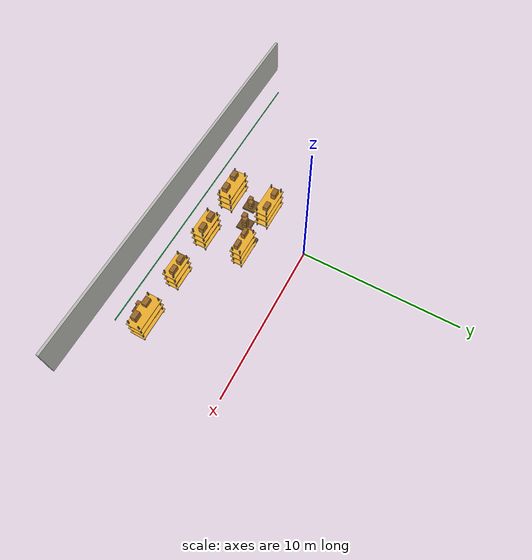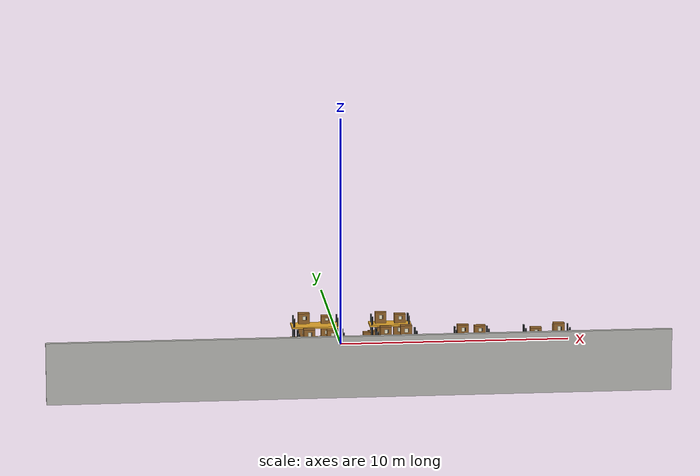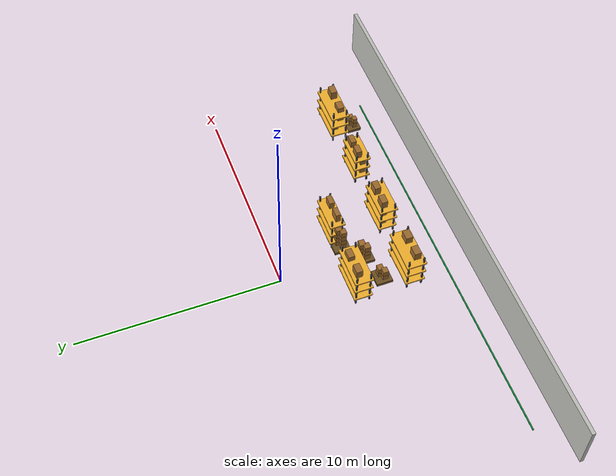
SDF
<sdf version="1.9">
 <world name="lidar_random_warehouse">
  <model name="main_aisle_left">
   <static>true</static>
   <pose>-1.000 -7.650 0.006 0 0 0</pose>
   <link name="link">
    <collision name="collision"><geometry><box><size>20.000 0.070 0.012</size></box></geometry></collision>
    <visual name="visual">
     <geometry><box><size>20.000 0.070 0.012</size></box></geometry>
     <material><ambient>0.04 0.45 0.16 1</ambient><diffuse>0.04 0.55 0.20 1</diffuse></material>
    </visual>
   </link>
  </model>
  <model name="front_wall">
   <static>true</static>
   <pose>0.000 -8.910 1.300 0 0 0</pose>
   <link name="link">
    <collision name="collision"><geometry><box><size>26.000 0.180 2.600</size></box></geometry></collision>
    <visual name="visual">
     <geometry><box><size>26.000 0.180 2.600</size></box></geometry>
     <material><ambient>0.66 0.66 0.64 1</ambient><diffuse>0.76 0.76 0.74 1</diffuse></material>
    </visual>
   </link>
  </model>
  <model name="shelf_2">
   <static>true</static>
   <pose>-1.400 -5.800 0 0 0 0</pose>
   <link name="link">
    <collision name="collision">
     <pose>0 0 1.025 0 0 0</pose>
     <geometry><box><size>1.958 0.805 2.050</size></box></geometry>
    </collision>
    <visual name="post_0">
     <pose>-0.944 -0.367 1.025 0 0 0</pose>
     <geometry><box><size>0.070 0.070 2.050</size></box></geometry>
     <material><ambient>0.03 0.04 0.05 1</ambient><diffuse>0.05 0.06 0.07 1</diffuse></material>
    </visual>
    <visual name="post_1">
     <pose>-0.944 0.367 1.025 0 0 0</pose>
     <geometry><box><size>0.070 0.070 2.050</size></box></geometry>
     <material><ambient>0.03 0.04 0.05 1</ambient><diffuse>0.05 0.06 0.07 1</diffuse></material>
    </visual>
    <visual name="post_2">
     <pose>0.944 -0.367 1.025 0 0 0</pose>
     <geometry><box><size>0.070 0.070 2.050</size></box></geometry>
     <material><ambient>0.03 0.04 0.05 1</ambient><diffuse>0.05 0.06 0.07 1</diffuse></material>
    </visual>
    <visual name="post_3">
     <pose>0.944 0.367 1.025 0 0 0</pose>
     <geometry><box><size>0.070 0.070 2.050</size></box></geometry>
     <material><ambient>0.03 0.04 0.05 1</ambient><diffuse>0.05 0.06 0.07 1</diffuse></material>
    </visual>
    <visual name="deck_1">
     <pose>0.000 0.000 0.420 0 0 0</pose>
     <geometry><box><size>2.098 0.985 0.070</size></box></geometry>
     <material><ambient>0.70 0.52 0.18 1</ambient><diffuse>0.96 0.70 0.18 1</diffuse></material>
    </visual>
    <visual name="box_1_-0.5">
     <pose>-0.490 0.145 0.661 0 0 0</pose>
     <geometry><box><size>0.480 0.338 0.321</size></box></geometry>
     <material><ambient>0.44 0.28 0.11 1</ambient><diffuse>0.62 0.42 0.18 1</diffuse></material>
    </visual>
    <visual name="label_1_-0.5">
     <pose>-0.490 -0.028 0.687 0 0 0</pose>
     <geometry><box><size>0.134 0.012 0.122</size></box></geometry>
     <material><ambient>0.86 0.86 0.76 1</ambient><diffuse>0.98 0.96 0.84 1</diffuse></material>
    </visual>
    <visual name="barcode_1_-0.5">
     <pose>-0.403 -0.032 0.687 0 0 0</pose>
     <geometry><box><size>0.029 0.014 0.109</size></box></geometry>
     <material><ambient>0.02 0.02 0.02 1</ambient><diffuse>0.02 0.02 0.02 1</diffuse></material>
    </visual>
    <visual name="box_1_0.5">
     <pose>0.490 0.145 0.681 0 0 0</pose>
     <geometry><box><size>0.480 0.338 0.361</size></box></geometry>
     <material><ambient>0.44 0.28 0.11 1</ambient><diffuse>0.62 0.42 0.18 1</diffuse></material>
    </visual>
    <visual name="label_1_0.5">
     <pose>0.490 -0.028 0.708 0 0 0</pose>
     <geometry><box><size>0.134 0.012 0.137</size></box></geometry>
     <material><ambient>0.86 0.86 0.76 1</ambient><diffuse>0.98 0.96 0.84 1</diffuse></material>
    </visual>
    <visual name="barcode_1_0.5">
     <pose>0.576 -0.032 0.708 0 0 0</pose>
     <geometry><box><size>0.029 0.014 0.123</size></box></geometry>
     <material><ambient>0.02 0.02 0.02 1</ambient><diffuse>0.02 0.02 0.02 1</diffuse></material>
    </visual>
    <visual name="deck_2">
     <pose>0.000 0.000 1.040 0 0 0</pose>
     <geometry><box><size>2.098 0.985 0.070</size></box></geometry>
     <material><ambient>0.70 0.52 0.18 1</ambient><diffuse>0.96 0.70 0.18 1</diffuse></material>
    </visual>
    <visual name="box_2_-0.5">
     <pose>-0.490 0.145 1.333 0 0 0</pose>
     <geometry><box><size>0.480 0.338 0.427</size></box></geometry>
     <material><ambient>0.44 0.28 0.11 1</ambient><diffuse>0.62 0.42 0.18 1</diffuse></material>
    </visual>
    <visual name="label_2_-0.5">
     <pose>-0.490 -0.028 1.362 0 0 0</pose>
     <geometry><box><size>0.134 0.012 0.162</size></box></geometry>
     <material><ambient>0.86 0.86 0.76 1</ambient><diffuse>0.98 0.96 0.84 1</diffuse></material>
    </visual>
    <visual name="barcode_2_-0.5">
     <pose>-0.403 -0.032 1.362 0 0 0</pose>
     <geometry><box><size>0.029 0.014 0.145</size></box></geometry>
     <material><ambient>0.02 0.02 0.02 1</ambient><diffuse>0.02 0.02 0.02 1</diffuse></material>
    </visual>
    <visual name="box_2_0.5">
     <pose>0.490 0.145 1.355 0 0 0</pose>
     <geometry><box><size>0.480 0.338 0.471</size></box></geometry>
     <material><ambient>0.44 0.28 0.11 1</ambient><diffuse>0.62 0.42 0.18 1</diffuse></material>
    </visual>
    <visual name="label_2_0.5">
     <pose>0.490 -0.028 1.385 0 0 0</pose>
     <geometry><box><size>0.134 0.012 0.179</size></box></geometry>
     <material><ambient>0.86 0.86 0.76 1</ambient><diffuse>0.98 0.96 0.84 1</diffuse></material>
    </visual>
    <visual name="barcode_2_0.5">
     <pose>0.576 -0.032 1.385 0 0 0</pose>
     <geometry><box><size>0.029 0.014 0.160</size></box></geometry>
     <material><ambient>0.02 0.02 0.02 1</ambient><diffuse>0.02 0.02 0.02 1</diffuse></material>
    </visual>
    <visual name="deck_3">
     <pose>0.000 0.000 1.660 0 0 0</pose>
     <geometry><box><size>2.098 0.985 0.070</size></box></geometry>
     <material><ambient>0.70 0.52 0.18 1</ambient><diffuse>0.96 0.70 0.18 1</diffuse></material>
    </visual>
    <visual name="box_3_-0.5">
     <pose>-0.490 -0.145 1.966 0 0 0</pose>
     <geometry><box><size>0.480 0.338 0.451</size></box></geometry>
     <material><ambient>0.44 0.28 0.11 1</ambient><diffuse>0.62 0.42 0.18 1</diffuse></material>
    </visual>
    <visual name="label_3_-0.5">
     <pose>-0.490 -0.318 1.995 0 0 0</pose>
     <geometry><box><size>0.134 0.012 0.171</size></box></geometry>
     <material><ambient>0.86 0.86 0.76 1</ambient><diffuse>0.98 0.96 0.84 1</diffuse></material>
    </visual>
    <visual name="barcode_3_-0.5">
     <pose>-0.403 -0.322 1.995 0 0 0</pose>
     <geometry><box><size>0.029 0.014 0.153</size></box></geometry>
     <material><ambient>0.02 0.02 0.02 1</ambient><diffuse>0.02 0.02 0.02 1</diffuse></material>
    </visual>
    <visual name="box_3_0.5">
     <pose>0.490 -0.145 1.941 0 0 0</pose>
     <geometry><box><size>0.480 0.338 0.402</size></box></geometry>
     <material><ambient>0.44 0.28 0.11 1</ambient><diffuse>0.62 0.42 0.18 1</diffuse></material>
    </visual>
    <visual name="label_3_0.5">
     <pose>0.490 -0.318 1.969 0 0 0</pose>
     <geometry><box><size>0.134 0.012 0.153</size></box></geometry>
     <material><ambient>0.86 0.86 0.76 1</ambient><diffuse>0.98 0.96 0.84 1</diffuse></material>
    </visual>
    <visual name="barcode_3_0.5">
     <pose>0.576 -0.322 1.969 0 0 0</pose>
     <geometry><box><size>0.029 0.014 0.137</size></box></geometry>
     <material><ambient>0.02 0.02 0.02 1</ambient><diffuse>0.02 0.02 0.02 1</diffuse></material>
    </visual>
   </link>
  </model>
  <model name="shelf_3">
   <static>true</static>
   <pose>1.800 -5.800 0 0 0 0</pose>
   <link name="link">
    <collision name="collision">
     <pose>0 0 1.025 0 0 0</pose>
     <geometry><box><size>1.716 0.743 2.050</size></box></geometry>
    </collision>
    <visual name="post_0">
     <pose>-0.823 -0.336 1.025 0 0 0</pose>
     <geometry><box><size>0.070 0.070 2.050</size></box></geometry>
     <material><ambient>0.03 0.04 0.05 1</ambient><diffuse>0.05 0.06 0.07 1</diffuse></material>
    </visual>
    <visual name="post_1">
     <pose>-0.823 0.336 1.025 0 0 0</pose>
     <geometry><box><size>0.070 0.070 2.050</size></box></geometry>
     <material><ambient>0.03 0.04 0.05 1</ambient><diffuse>0.05 0.06 0.07 1</diffuse></material>
    </visual>
    <visual name="post_2">
     <pose>0.823 -0.336 1.025 0 0 0</pose>
     <geometry><box><size>0.070 0.070 2.050</size></box></geometry>
     <material><ambient>0.03 0.04 0.05 1</ambient><diffuse>0.05 0.06 0.07 1</diffuse></material>
    </visual>
    <visual name="post_3">
     <pose>0.823 0.336 1.025 0 0 0</pose>
     <geometry><box><size>0.070 0.070 2.050</size></box></geometry>
     <material><ambient>0.03 0.04 0.05 1</ambient><diffuse>0.05 0.06 0.07 1</diffuse></material>
    </visual>
    <visual name="deck_1">
     <pose>0.000 0.000 0.420 0 0 0</pose>
     <geometry><box><size>1.856 0.923 0.070</size></box></geometry>
     <material><ambient>0.70 0.52 0.18 1</ambient><diffuse>0.96 0.70 0.18 1</diffuse></material>
    </visual>
    <visual name="box_1_-0.4">
     <pose>-0.429 0.134 0.643 0 0 0</pose>
     <geometry><box><size>0.480 0.312 0.286</size></box></geometry>
     <material><ambient>0.44 0.28 0.11 1</ambient><diffuse>0.62 0.42 0.18 1</diffuse></material>
    </visual>
    <visual name="label_1_-0.4">
     <pose>-0.429 -0.026 0.669 0 0 0</pose>
     <geometry><box><size>0.134 0.012 0.109</size></box></geometry>
     <material><ambient>0.86 0.86 0.76 1</ambient><diffuse>0.98 0.96 0.84 1</diffuse></material>
    </visual>
    <visual name="barcode_1_-0.4">
     <pose>-0.343 -0.030 0.669 0 0 0</pose>
     <geometry><box><size>0.029 0.014 0.097</size></box></geometry>
     <material><ambient>0.02 0.02 0.02 1</ambient><diffuse>0.02 0.02 0.02 1</diffuse></material>
    </visual>
    <visual name="box_1_0.4">
     <pose>0.429 0.134 0.715 0 0 0</pose>
     <geometry><box><size>0.480 0.312 0.429</size></box></geometry>
     <material><ambient>0.44 0.28 0.11 1</ambient><diffuse>0.62 0.42 0.18 1</diffuse></material>
    </visual>
    <visual name="label_1_0.4">
     <pose>0.429 -0.026 0.743 0 0 0</pose>
     <geometry><box><size>0.134 0.012 0.163</size></box></geometry>
     <material><ambient>0.86 0.86 0.76 1</ambient><diffuse>0.98 0.96 0.84 1</diffuse></material>
    </visual>
    <visual name="barcode_1_0.4">
     <pose>0.515 -0.030 0.743 0 0 0</pose>
     <geometry><box><size>0.029 0.014 0.146</size></box></geometry>
     <material><ambient>0.02 0.02 0.02 1</ambient><diffuse>0.02 0.02 0.02 1</diffuse></material>
    </visual>
    <visual name="deck_2">
     <pose>0.000 0.000 1.040 0 0 0</pose>
     <geometry><box><size>1.856 0.923 0.070</size></box></geometry>
     <material><ambient>0.70 0.52 0.18 1</ambient><diffuse>0.96 0.70 0.18 1</diffuse></material>
    </visual>
    <visual name="box_2_-0.4">
     <pose>-0.429 0.134 1.332 0 0 0</pose>
     <geometry><box><size>0.480 0.312 0.424</size></box></geometry>
     <material><ambient>0.44 0.28 0.11 1</ambient><diffuse>0.62 0.42 0.18 1</diffuse></material>
    </visual>
    <visual name="label_2_-0.4">
     <pose>-0.429 -0.026 1.360 0 0 0</pose>
     <geometry><box><size>0.134 0.012 0.161</size></box></geometry>
     <material><ambient>0.86 0.86 0.76 1</ambient><diffuse>0.98 0.96 0.84 1</diffuse></material>
    </visual>
    <visual name="barcode_2_-0.4">
     <pose>-0.343 -0.030 1.360 0 0 0</pose>
     <geometry><box><size>0.029 0.014 0.144</size></box></geometry>
     <material><ambient>0.02 0.02 0.02 1</ambient><diffuse>0.02 0.02 0.02 1</diffuse></material>
    </visual>
    <visual name="box_2_0.4">
     <pose>0.429 0.134 1.300 0 0 0</pose>
     <geometry><box><size>0.480 0.312 0.360</size></box></geometry>
     <material><ambient>0.44 0.28 0.11 1</ambient><diffuse>0.62 0.42 0.18 1</diffuse></material>
    </visual>
    <visual name="label_2_0.4">
     <pose>0.429 -0.026 1.327 0 0 0</pose>
     <geometry><box><size>0.134 0.012 0.137</size></box></geometry>
     <material><ambient>0.86 0.86 0.76 1</ambient><diffuse>0.98 0.96 0.84 1</diffuse></material>
    </visual>
    <visual name="barcode_2_0.4">
     <pose>0.515 -0.030 1.327 0 0 0</pose>
     <geometry><box><size>0.029 0.014 0.122</size></box></geometry>
     <material><ambient>0.02 0.02 0.02 1</ambient><diffuse>0.02 0.02 0.02 1</diffuse></material>
    </visual>
    <visual name="deck_3">
     <pose>0.000 0.000 1.660 0 0 0</pose>
     <geometry><box><size>1.856 0.923 0.070</size></box></geometry>
     <material><ambient>0.70 0.52 0.18 1</ambient><diffuse>0.96 0.70 0.18 1</diffuse></material>
    </visual>
    <visual name="box_3_-0.4">
     <pose>-0.429 0.134 1.952 0 0 0</pose>
     <geometry><box><size>0.480 0.312 0.423</size></box></geometry>
     <material><ambient>0.44 0.28 0.11 1</ambient><diffuse>0.62 0.42 0.18 1</diffuse></material>
    </visual>
    <visual name="label_3_-0.4">
     <pose>-0.429 -0.026 1.980 0 0 0</pose>
     <geometry><box><size>0.134 0.012 0.161</size></box></geometry>
     <material><ambient>0.86 0.86 0.76 1</ambient><diffuse>0.98 0.96 0.84 1</diffuse></material>
    </visual>
    <visual name="barcode_3_-0.4">
     <pose>-0.343 -0.030 1.980 0 0 0</pose>
     <geometry><box><size>0.029 0.014 0.144</size></box></geometry>
     <material><ambient>0.02 0.02 0.02 1</ambient><diffuse>0.02 0.02 0.02 1</diffuse></material>
    </visual>
    <visual name="box_3_0.4">
     <pose>0.429 0.134 1.972 0 0 0</pose>
     <geometry><box><size>0.480 0.312 0.464</size></box></geometry>
     <material><ambient>0.44 0.28 0.11 1</ambient><diffuse>0.62 0.42 0.18 1</diffuse></material>
    </visual>
    <visual name="label_3_0.4">
     <pose>0.429 -0.026 2.001 0 0 0</pose>
     <geometry><box><size>0.134 0.012 0.176</size></box></geometry>
     <material><ambient>0.86 0.86 0.76 1</ambient><diffuse>0.98 0.96 0.84 1</diffuse></material>
    </visual>
    <visual name="barcode_3_0.4">
     <pose>0.515 -0.030 2.001 0 0 0</pose>
     <geometry><box><size>0.029 0.014 0.158</size></box></geometry>
     <material><ambient>0.02 0.02 0.02 1</ambient><diffuse>0.02 0.02 0.02 1</diffuse></material>
    </visual>
   </link>
  </model>
  <model name="shelf_4">
   <static>true</static>
   <pose>5.000 -5.800 0 0 0 0</pose>
   <link name="link">
    <collision name="collision">
     <pose>0 0 1.025 0 0 0</pose>
     <geometry><box><size>1.454 0.663 2.050</size></box></geometry>
    </collision>
    <visual name="post_0">
     <pose>-0.692 -0.297 1.025 0 0 0</pose>
     <geometry><box><size>0.070 0.070 2.050</size></box></geometry>
     <material><ambient>0.03 0.04 0.05 1</ambient><diffuse>0.05 0.06 0.07 1</diffuse></material>
    </visual>
    <visual name="post_1">
     <pose>-0.692 0.297 1.025 0 0 0</pose>
     <geometry><box><size>0.070 0.070 2.050</size></box></geometry>
     <material><ambient>0.03 0.04 0.05 1</ambient><diffuse>0.05 0.06 0.07 1</diffuse></material>
    </visual>
    <visual name="post_2">
     <pose>0.692 -0.297 1.025 0 0 0</pose>
     <geometry><box><size>0.070 0.070 2.050</size></box></geometry>
     <material><ambient>0.03 0.04 0.05 1</ambient><diffuse>0.05 0.06 0.07 1</diffuse></material>
    </visual>
    <visual name="post_3">
     <pose>0.692 0.297 1.025 0 0 0</pose>
     <geometry><box><size>0.070 0.070 2.050</size></box></geometry>
     <material><ambient>0.03 0.04 0.05 1</ambient><diffuse>0.05 0.06 0.07 1</diffuse></material>
    </visual>
    <visual name="deck_1">
     <pose>0.000 0.000 0.420 0 0 0</pose>
     <geometry><box><size>1.594 0.843 0.070</size></box></geometry>
     <material><ambient>0.70 0.52 0.18 1</ambient><diffuse>0.96 0.70 0.18 1</diffuse></material>
    </visual>
    <visual name="box_1_-0.4">
     <pose>-0.363 -0.119 0.703 0 0 0</pose>
     <geometry><box><size>0.480 0.279 0.406</size></box></geometry>
     <material><ambient>0.44 0.28 0.11 1</ambient><diffuse>0.62 0.42 0.18 1</diffuse></material>
    </visual>
    <visual name="label_1_-0.4">
     <pose>-0.363 -0.263 0.731 0 0 0</pose>
     <geometry><box><size>0.134 0.012 0.154</size></box></geometry>
     <material><ambient>0.86 0.86 0.76 1</ambient><diffuse>0.98 0.96 0.84 1</diffuse></material>
    </visual>
    <visual name="barcode_1_-0.4">
     <pose>-0.277 -0.267 0.731 0 0 0</pose>
     <geometry><box><size>0.029 0.014 0.138</size></box></geometry>
     <material><ambient>0.02 0.02 0.02 1</ambient><diffuse>0.02 0.02 0.02 1</diffuse></material>
    </visual>
    <visual name="box_1_0.4">
     <pose>0.363 0.119 0.707 0 0 0</pose>
     <geometry><box><size>0.480 0.279 0.415</size></box></geometry>
     <material><ambient>0.44 0.28 0.11 1</ambient><diffuse>0.62 0.42 0.18 1</diffuse></material>
    </visual>
    <visual name="label_1_0.4">
     <pose>0.363 -0.024 0.736 0 0 0</pose>
     <geometry><box><size>0.134 0.012 0.158</size></box></geometry>
     <material><ambient>0.86 0.86 0.76 1</ambient><diffuse>0.98 0.96 0.84 1</diffuse></material>
    </visual>
    <visual name="barcode_1_0.4">
     <pose>0.450 -0.028 0.736 0 0 0</pose>
     <geometry><box><size>0.029 0.014 0.141</size></box></geometry>
     <material><ambient>0.02 0.02 0.02 1</ambient><diffuse>0.02 0.02 0.02 1</diffuse></material>
    </visual>
    <visual name="deck_2">
     <pose>0.000 0.000 1.040 0 0 0</pose>
     <geometry><box><size>1.594 0.843 0.070</size></box></geometry>
     <material><ambient>0.70 0.52 0.18 1</ambient><diffuse>0.96 0.70 0.18 1</diffuse></material>
    </visual>
    <visual name="box_2_-0.4">
     <pose>-0.363 -0.119 1.318 0 0 0</pose>
     <geometry><box><size>0.480 0.279 0.396</size></box></geometry>
     <material><ambient>0.44 0.28 0.11 1</ambient><diffuse>0.62 0.42 0.18 1</diffuse></material>
    </visual>
    <visual name="label_2_-0.4">
     <pose>-0.363 -0.263 1.346 0 0 0</pose>
     <geometry><box><size>0.134 0.012 0.150</size></box></geometry>
     <material><ambient>0.86 0.86 0.76 1</ambient><diffuse>0.98 0.96 0.84 1</diffuse></material>
    </visual>
    <visual name="barcode_2_-0.4">
     <pose>-0.277 -0.267 1.346 0 0 0</pose>
     <geometry><box><size>0.029 0.014 0.135</size></box></geometry>
     <material><ambient>0.02 0.02 0.02 1</ambient><diffuse>0.02 0.02 0.02 1</diffuse></material>
    </visual>
    <visual name="box_2_0.4">
     <pose>0.363 -0.119 1.307 0 0 0</pose>
     <geometry><box><size>0.480 0.279 0.375</size></box></geometry>
     <material><ambient>0.44 0.28 0.11 1</ambient><diffuse>0.62 0.42 0.18 1</diffuse></material>
    </visual>
    <visual name="label_2_0.4">
     <pose>0.363 -0.263 1.335 0 0 0</pose>
     <geometry><box><size>0.134 0.012 0.142</size></box></geometry>
     <material><ambient>0.86 0.86 0.76 1</ambient><diffuse>0.98 0.96 0.84 1</diffuse></material>
    </visual>
    <visual name="barcode_2_0.4">
     <pose>0.450 -0.267 1.335 0 0 0</pose>
     <geometry><box><size>0.029 0.014 0.127</size></box></geometry>
     <material><ambient>0.02 0.02 0.02 1</ambient><diffuse>0.02 0.02 0.02 1</diffuse></material>
    </visual>
    <visual name="deck_3">
     <pose>0.000 0.000 1.660 0 0 0</pose>
     <geometry><box><size>1.594 0.843 0.070</size></box></geometry>
     <material><ambient>0.70 0.52 0.18 1</ambient><diffuse>0.96 0.70 0.18 1</diffuse></material>
    </visual>
    <visual name="box_3_-0.4">
     <pose>-0.363 0.119 1.956 0 0 0</pose>
     <geometry><box><size>0.480 0.279 0.432</size></box></geometry>
     <material><ambient>0.44 0.28 0.11 1</ambient><diffuse>0.62 0.42 0.18 1</diffuse></material>
    </visual>
    <visual name="label_3_-0.4">
     <pose>-0.363 -0.024 1.985 0 0 0</pose>
     <geometry><box><size>0.134 0.012 0.164</size></box></geometry>
     <material><ambient>0.86 0.86 0.76 1</ambient><diffuse>0.98 0.96 0.84 1</diffuse></material>
    </visual>
    <visual name="barcode_3_-0.4">
     <pose>-0.277 -0.028 1.985 0 0 0</pose>
     <geometry><box><size>0.029 0.014 0.147</size></box></geometry>
     <material><ambient>0.02 0.02 0.02 1</ambient><diffuse>0.02 0.02 0.02 1</diffuse></material>
    </visual>
    <visual name="box_3_0.4">
     <pose>0.363 0.119 1.933 0 0 0</pose>
     <geometry><box><size>0.480 0.279 0.385</size></box></geometry>
     <material><ambient>0.44 0.28 0.11 1</ambient><diffuse>0.62 0.42 0.18 1</diffuse></material>
    </visual>
    <visual name="label_3_0.4">
     <pose>0.363 -0.024 1.960 0 0 0</pose>
     <geometry><box><size>0.134 0.012 0.146</size></box></geometry>
     <material><ambient>0.86 0.86 0.76 1</ambient><diffuse>0.98 0.96 0.84 1</diffuse></material>
    </visual>
    <visual name="barcode_3_0.4">
     <pose>0.450 -0.028 1.960 0 0 0</pose>
     <geometry><box><size>0.029 0.014 0.131</size></box></geometry>
     <material><ambient>0.02 0.02 0.02 1</ambient><diffuse>0.02 0.02 0.02 1</diffuse></material>
    </visual>
   </link>
  </model>
  <model name="shelf_5">
   <static>true</static>
   <pose>8.200 -5.800 0 0 0 0</pose>
   <link name="link">
    <collision name="collision">
     <pose>0 0 1.025 0 0 0</pose>
     <geometry><box><size>1.949 0.763 2.050</size></box></geometry>
    </collision>
    <visual name="post_0">
     <pose>-0.939 -0.346 1.025 0 0 0</pose>
     <geometry><box><size>0.070 0.070 2.050</size></box></geometry>
     <material><ambient>0.03 0.04 0.05 1</ambient><diffuse>0.05 0.06 0.07 1</diffuse></material>
    </visual>
    <visual name="post_1">
     <pose>-0.939 0.346 1.025 0 0 0</pose>
     <geometry><box><size>0.070 0.070 2.050</size></box></geometry>
     <material><ambient>0.03 0.04 0.05 1</ambient><diffuse>0.05 0.06 0.07 1</diffuse></material>
    </visual>
    <visual name="post_2">
     <pose>0.939 -0.346 1.025 0 0 0</pose>
     <geometry><box><size>0.070 0.070 2.050</size></box></geometry>
     <material><ambient>0.03 0.04 0.05 1</ambient><diffuse>0.05 0.06 0.07 1</diffuse></material>
    </visual>
    <visual name="post_3">
     <pose>0.939 0.346 1.025 0 0 0</pose>
     <geometry><box><size>0.070 0.070 2.050</size></box></geometry>
     <material><ambient>0.03 0.04 0.05 1</ambient><diffuse>0.05 0.06 0.07 1</diffuse></material>
    </visual>
    <visual name="deck_1">
     <pose>0.000 0.000 0.420 0 0 0</pose>
     <geometry><box><size>2.089 0.943 0.070</size></box></geometry>
     <material><ambient>0.70 0.52 0.18 1</ambient><diffuse>0.96 0.70 0.18 1</diffuse></material>
    </visual>
    <visual name="box_1_-0.5">
     <pose>-0.487 0.137 0.651 0 0 0</pose>
     <geometry><box><size>0.480 0.320 0.302</size></box></geometry>
     <material><ambient>0.44 0.28 0.11 1</ambient><diffuse>0.62 0.42 0.18 1</diffuse></material>
    </visual>
    <visual name="label_1_-0.5">
     <pose>-0.487 -0.027 0.677 0 0 0</pose>
     <geometry><box><size>0.134 0.012 0.115</size></box></geometry>
     <material><ambient>0.86 0.86 0.76 1</ambient><diffuse>0.98 0.96 0.84 1</diffuse></material>
    </visual>
    <visual name="barcode_1_-0.5">
     <pose>-0.401 -0.031 0.677 0 0 0</pose>
     <geometry><box><size>0.029 0.014 0.103</size></box></geometry>
     <material><ambient>0.02 0.02 0.02 1</ambient><diffuse>0.02 0.02 0.02 1</diffuse></material>
    </visual>
    <visual name="box_1_0.5">
     <pose>0.487 -0.137 0.640 0 0 0</pose>
     <geometry><box><size>0.480 0.320 0.280</size></box></geometry>
     <material><ambient>0.44 0.28 0.11 1</ambient><diffuse>0.62 0.42 0.18 1</diffuse></material>
    </visual>
    <visual name="label_1_0.5">
     <pose>0.487 -0.302 0.666 0 0 0</pose>
     <geometry><box><size>0.134 0.012 0.107</size></box></geometry>
     <material><ambient>0.86 0.86 0.76 1</ambient><diffuse>0.98 0.96 0.84 1</diffuse></material>
    </visual>
    <visual name="barcode_1_0.5">
     <pose>0.574 -0.306 0.666 0 0 0</pose>
     <geometry><box><size>0.029 0.014 0.095</size></box></geometry>
     <material><ambient>0.02 0.02 0.02 1</ambient><diffuse>0.02 0.02 0.02 1</diffuse></material>
    </visual>
    <visual name="deck_2">
     <pose>0.000 0.000 1.040 0 0 0</pose>
     <geometry><box><size>2.089 0.943 0.070</size></box></geometry>
     <material><ambient>0.70 0.52 0.18 1</ambient><diffuse>0.96 0.70 0.18 1</diffuse></material>
    </visual>
    <visual name="box_2_-0.5">
     <pose>-0.487 -0.137 1.276 0 0 0</pose>
     <geometry><box><size>0.480 0.320 0.313</size></box></geometry>
     <material><ambient>0.44 0.28 0.11 1</ambient><diffuse>0.62 0.42 0.18 1</diffuse></material>
    </visual>
    <visual name="label_2_-0.5">
     <pose>-0.487 -0.302 1.303 0 0 0</pose>
     <geometry><box><size>0.134 0.012 0.119</size></box></geometry>
     <material><ambient>0.86 0.86 0.76 1</ambient><diffuse>0.98 0.96 0.84 1</diffuse></material>
    </visual>
    <visual name="barcode_2_-0.5">
     <pose>-0.401 -0.306 1.303 0 0 0</pose>
     <geometry><box><size>0.029 0.014 0.106</size></box></geometry>
     <material><ambient>0.02 0.02 0.02 1</ambient><diffuse>0.02 0.02 0.02 1</diffuse></material>
    </visual>
    <visual name="box_2_0.5">
     <pose>0.487 -0.137 1.332 0 0 0</pose>
     <geometry><box><size>0.480 0.320 0.424</size></box></geometry>
     <material><ambient>0.44 0.28 0.11 1</ambient><diffuse>0.62 0.42 0.18 1</diffuse></material>
    </visual>
    <visual name="label_2_0.5">
     <pose>0.487 -0.302 1.361 0 0 0</pose>
     <geometry><box><size>0.134 0.012 0.161</size></box></geometry>
     <material><ambient>0.86 0.86 0.76 1</ambient><diffuse>0.98 0.96 0.84 1</diffuse></material>
    </visual>
    <visual name="barcode_2_0.5">
     <pose>0.574 -0.306 1.361 0 0 0</pose>
     <geometry><box><size>0.029 0.014 0.144</size></box></geometry>
     <material><ambient>0.02 0.02 0.02 1</ambient><diffuse>0.02 0.02 0.02 1</diffuse></material>
    </visual>
    <visual name="deck_3">
     <pose>0.000 0.000 1.660 0 0 0</pose>
     <geometry><box><size>2.089 0.943 0.070</size></box></geometry>
     <material><ambient>0.70 0.52 0.18 1</ambient><diffuse>0.96 0.70 0.18 1</diffuse></material>
    </visual>
    <visual name="box_3_-0.5">
     <pose>-0.487 -0.137 1.893 0 0 0</pose>
     <geometry><box><size>0.480 0.320 0.306</size></box></geometry>
     <material><ambient>0.44 0.28 0.11 1</ambient><diffuse>0.62 0.42 0.18 1</diffuse></material>
    </visual>
    <visual name="label_3_-0.5">
     <pose>-0.487 -0.302 1.919 0 0 0</pose>
     <geometry><box><size>0.134 0.012 0.116</size></box></geometry>
     <material><ambient>0.86 0.86 0.76 1</ambient><diffuse>0.98 0.96 0.84 1</diffuse></material>
    </visual>
    <visual name="barcode_3_-0.5">
     <pose>-0.401 -0.306 1.919 0 0 0</pose>
     <geometry><box><size>0.029 0.014 0.104</size></box></geometry>
     <material><ambient>0.02 0.02 0.02 1</ambient><diffuse>0.02 0.02 0.02 1</diffuse></material>
    </visual>
    <visual name="box_3_0.5">
     <pose>0.487 -0.137 1.980 0 0 0</pose>
     <geometry><box><size>0.480 0.320 0.479</size></box></geometry>
     <material><ambient>0.44 0.28 0.11 1</ambient><diffuse>0.62 0.42 0.18 1</diffuse></material>
    </visual>
    <visual name="label_3_0.5">
     <pose>0.487 -0.302 2.009 0 0 0</pose>
     <geometry><box><size>0.134 0.012 0.182</size></box></geometry>
     <material><ambient>0.86 0.86 0.76 1</ambient><diffuse>0.98 0.96 0.84 1</diffuse></material>
    </visual>
    <visual name="barcode_3_0.5">
     <pose>0.574 -0.306 2.009 0 0 0</pose>
     <geometry><box><size>0.029 0.014 0.163</size></box></geometry>
     <material><ambient>0.02 0.02 0.02 1</ambient><diffuse>0.02 0.02 0.02 1</diffuse></material>
    </visual>
   </link>
  </model>
  <model name="shelf_7">
   <static>true</static>
   <pose>-1.400 -3.200 0 0 0 0</pose>
   <link name="link">
    <collision name="collision">
     <pose>0 0 1.025 0 0 0</pose>
     <geometry><box><size>1.946 0.741 2.050</size></box></geometry>
    </collision>
    <visual name="post_0">
     <pose>-0.938 -0.336 1.025 0 0 0</pose>
     <geometry><box><size>0.070 0.070 2.050</size></box></geometry>
     <material><ambient>0.03 0.04 0.05 1</ambient><diffuse>0.05 0.06 0.07 1</diffuse></material>
    </visual>
    <visual name="post_1">
     <pose>-0.938 0.336 1.025 0 0 0</pose>
     <geometry><box><size>0.070 0.070 2.050</size></box></geometry>
     <material><ambient>0.03 0.04 0.05 1</ambient><diffuse>0.05 0.06 0.07 1</diffuse></material>
    </visual>
    <visual name="post_2">
     <pose>0.938 -0.336 1.025 0 0 0</pose>
     <geometry><box><size>0.070 0.070 2.050</size></box></geometry>
     <material><ambient>0.03 0.04 0.05 1</ambient><diffuse>0.05 0.06 0.07 1</diffuse></material>
    </visual>
    <visual name="post_3">
     <pose>0.938 0.336 1.025 0 0 0</pose>
     <geometry><box><size>0.070 0.070 2.050</size></box></geometry>
     <material><ambient>0.03 0.04 0.05 1</ambient><diffuse>0.05 0.06 0.07 1</diffuse></material>
    </visual>
    <visual name="deck_1">
     <pose>0.000 0.000 0.420 0 0 0</pose>
     <geometry><box><size>2.086 0.921 0.070</size></box></geometry>
     <material><ambient>0.70 0.52 0.18 1</ambient><diffuse>0.96 0.70 0.18 1</diffuse></material>
    </visual>
    <visual name="box_1_-0.5">
     <pose>-0.486 -0.133 0.701 0 0 0</pose>
     <geometry><box><size>0.480 0.311 0.402</size></box></geometry>
     <material><ambient>0.44 0.28 0.11 1</ambient><diffuse>0.62 0.42 0.18 1</diffuse></material>
    </visual>
    <visual name="label_1_-0.5">
     <pose>-0.486 -0.293 0.729 0 0 0</pose>
     <geometry><box><size>0.134 0.012 0.153</size></box></geometry>
     <material><ambient>0.86 0.86 0.76 1</ambient><diffuse>0.98 0.96 0.84 1</diffuse></material>
    </visual>
    <visual name="barcode_1_-0.5">
     <pose>-0.400 -0.297 0.729 0 0 0</pose>
     <geometry><box><size>0.029 0.014 0.137</size></box></geometry>
     <material><ambient>0.02 0.02 0.02 1</ambient><diffuse>0.02 0.02 0.02 1</diffuse></material>
    </visual>
    <visual name="box_1_0.5">
     <pose>0.486 0.133 0.721 0 0 0</pose>
     <geometry><box><size>0.480 0.311 0.442</size></box></geometry>
     <material><ambient>0.44 0.28 0.11 1</ambient><diffuse>0.62 0.42 0.18 1</diffuse></material>
    </visual>
    <visual name="label_1_0.5">
     <pose>0.486 -0.026 0.750 0 0 0</pose>
     <geometry><box><size>0.134 0.012 0.168</size></box></geometry>
     <material><ambient>0.86 0.86 0.76 1</ambient><diffuse>0.98 0.96 0.84 1</diffuse></material>
    </visual>
    <visual name="barcode_1_0.5">
     <pose>0.573 -0.030 0.750 0 0 0</pose>
     <geometry><box><size>0.029 0.014 0.150</size></box></geometry>
     <material><ambient>0.02 0.02 0.02 1</ambient><diffuse>0.02 0.02 0.02 1</diffuse></material>
    </visual>
    <visual name="deck_2">
     <pose>0.000 0.000 1.040 0 0 0</pose>
     <geometry><box><size>2.086 0.921 0.070</size></box></geometry>
     <material><ambient>0.70 0.52 0.18 1</ambient><diffuse>0.96 0.70 0.18 1</diffuse></material>
    </visual>
    <visual name="box_2_-0.5">
     <pose>-0.486 0.133 1.359 0 0 0</pose>
     <geometry><box><size>0.480 0.311 0.477</size></box></geometry>
     <material><ambient>0.44 0.28 0.11 1</ambient><diffuse>0.62 0.42 0.18 1</diffuse></material>
    </visual>
    <visual name="label_2_-0.5">
     <pose>-0.486 -0.026 1.388 0 0 0</pose>
     <geometry><box><size>0.134 0.012 0.181</size></box></geometry>
     <material><ambient>0.86 0.86 0.76 1</ambient><diffuse>0.98 0.96 0.84 1</diffuse></material>
    </visual>
    <visual name="barcode_2_-0.5">
     <pose>-0.400 -0.030 1.388 0 0 0</pose>
     <geometry><box><size>0.029 0.014 0.162</size></box></geometry>
     <material><ambient>0.02 0.02 0.02 1</ambient><diffuse>0.02 0.02 0.02 1</diffuse></material>
    </visual>
    <visual name="box_2_0.5">
     <pose>0.486 0.133 1.313 0 0 0</pose>
     <geometry><box><size>0.480 0.311 0.386</size></box></geometry>
     <material><ambient>0.44 0.28 0.11 1</ambient><diffuse>0.62 0.42 0.18 1</diffuse></material>
    </visual>
    <visual name="label_2_0.5">
     <pose>0.486 -0.026 1.341 0 0 0</pose>
     <geometry><box><size>0.134 0.012 0.147</size></box></geometry>
     <material><ambient>0.86 0.86 0.76 1</ambient><diffuse>0.98 0.96 0.84 1</diffuse></material>
    </visual>
    <visual name="barcode_2_0.5">
     <pose>0.573 -0.030 1.341 0 0 0</pose>
     <geometry><box><size>0.029 0.014 0.131</size></box></geometry>
     <material><ambient>0.02 0.02 0.02 1</ambient><diffuse>0.02 0.02 0.02 1</diffuse></material>
    </visual>
    <visual name="deck_3">
     <pose>0.000 0.000 1.660 0 0 0</pose>
     <geometry><box><size>2.086 0.921 0.070</size></box></geometry>
     <material><ambient>0.70 0.52 0.18 1</ambient><diffuse>0.96 0.70 0.18 1</diffuse></material>
    </visual>
    <visual name="box_3_-0.5">
     <pose>-0.486 0.133 1.961 0 0 0</pose>
     <geometry><box><size>0.480 0.311 0.442</size></box></geometry>
     <material><ambient>0.44 0.28 0.11 1</ambient><diffuse>0.62 0.42 0.18 1</diffuse></material>
    </visual>
    <visual name="label_3_-0.5">
     <pose>-0.486 -0.026 1.990 0 0 0</pose>
     <geometry><box><size>0.134 0.012 0.168</size></box></geometry>
     <material><ambient>0.86 0.86 0.76 1</ambient><diffuse>0.98 0.96 0.84 1</diffuse></material>
    </visual>
    <visual name="barcode_3_-0.5">
     <pose>-0.400 -0.030 1.990 0 0 0</pose>
     <geometry><box><size>0.029 0.014 0.150</size></box></geometry>
     <material><ambient>0.02 0.02 0.02 1</ambient><diffuse>0.02 0.02 0.02 1</diffuse></material>
    </visual>
    <visual name="box_3_0.5">
     <pose>0.486 0.133 1.893 0 0 0</pose>
     <geometry><box><size>0.480 0.311 0.307</size></box></geometry>
     <material><ambient>0.44 0.28 0.11 1</ambient><diffuse>0.62 0.42 0.18 1</diffuse></material>
    </visual>
    <visual name="label_3_0.5">
     <pose>0.486 -0.026 1.920 0 0 0</pose>
     <geometry><box><size>0.134 0.012 0.117</size></box></geometry>
     <material><ambient>0.86 0.86 0.76 1</ambient><diffuse>0.98 0.96 0.84 1</diffuse></material>
    </visual>
    <visual name="barcode_3_0.5">
     <pose>0.573 -0.030 1.920 0 0 0</pose>
     <geometry><box><size>0.029 0.014 0.104</size></box></geometry>
     <material><ambient>0.02 0.02 0.02 1</ambient><diffuse>0.02 0.02 0.02 1</diffuse></material>
    </visual>
   </link>
  </model>
  <model name="shelf_8">
   <static>true</static>
   <pose>1.800 -3.200 0 0 0 0</pose>
   <link name="link">
    <collision name="collision">
     <pose>0 0 1.025 0 0 0</pose>
     <geometry><box><size>1.653 0.583 2.050</size></box></geometry>
    </collision>
    <visual name="post_0">
     <pose>-0.792 -0.256 1.025 0 0 0</pose>
     <geometry><box><size>0.070 0.070 2.050</size></box></geometry>
     <material><ambient>0.03 0.04 0.05 1</ambient><diffuse>0.05 0.06 0.07 1</diffuse></material>
    </visual>
    <visual name="post_1">
     <pose>-0.792 0.256 1.025 0 0 0</pose>
     <geometry><box><size>0.070 0.070 2.050</size></box></geometry>
     <material><ambient>0.03 0.04 0.05 1</ambient><diffuse>0.05 0.06 0.07 1</diffuse></material>
    </visual>
    <visual name="post_2">
     <pose>0.792 -0.256 1.025 0 0 0</pose>
     <geometry><box><size>0.070 0.070 2.050</size></box></geometry>
     <material><ambient>0.03 0.04 0.05 1</ambient><diffuse>0.05 0.06 0.07 1</diffuse></material>
    </visual>
    <visual name="post_3">
     <pose>0.792 0.256 1.025 0 0 0</pose>
     <geometry><box><size>0.070 0.070 2.050</size></box></geometry>
     <material><ambient>0.03 0.04 0.05 1</ambient><diffuse>0.05 0.06 0.07 1</diffuse></material>
    </visual>
    <visual name="deck_1">
     <pose>0.000 0.000 0.420 0 0 0</pose>
     <geometry><box><size>1.793 0.763 0.070</size></box></geometry>
     <material><ambient>0.70 0.52 0.18 1</ambient><diffuse>0.96 0.70 0.18 1</diffuse></material>
    </visual>
    <visual name="box_1_-0.4">
     <pose>-0.413 0.105 0.681 0 0 0</pose>
     <geometry><box><size>0.480 0.245 0.363</size></box></geometry>
     <material><ambient>0.44 0.28 0.11 1</ambient><diffuse>0.62 0.42 0.18 1</diffuse></material>
    </visual>
    <visual name="label_1_-0.4">
     <pose>-0.413 -0.021 0.709 0 0 0</pose>
     <geometry><box><size>0.134 0.012 0.138</size></box></geometry>
     <material><ambient>0.86 0.86 0.76 1</ambient><diffuse>0.98 0.96 0.84 1</diffuse></material>
    </visual>
    <visual name="barcode_1_-0.4">
     <pose>-0.327 -0.025 0.709 0 0 0</pose>
     <geometry><box><size>0.029 0.014 0.123</size></box></geometry>
     <material><ambient>0.02 0.02 0.02 1</ambient><diffuse>0.02 0.02 0.02 1</diffuse></material>
    </visual>
    <visual name="box_1_0.4">
     <pose>0.413 0.105 0.651 0 0 0</pose>
     <geometry><box><size>0.480 0.245 0.303</size></box></geometry>
     <material><ambient>0.44 0.28 0.11 1</ambient><diffuse>0.62 0.42 0.18 1</diffuse></material>
    </visual>
    <visual name="label_1_0.4">
     <pose>0.413 -0.021 0.677 0 0 0</pose>
     <geometry><box><size>0.134 0.012 0.115</size></box></geometry>
     <material><ambient>0.86 0.86 0.76 1</ambient><diffuse>0.98 0.96 0.84 1</diffuse></material>
    </visual>
    <visual name="barcode_1_0.4">
     <pose>0.500 -0.025 0.677 0 0 0</pose>
     <geometry><box><size>0.029 0.014 0.103</size></box></geometry>
     <material><ambient>0.02 0.02 0.02 1</ambient><diffuse>0.02 0.02 0.02 1</diffuse></material>
    </visual>
    <visual name="deck_2">
     <pose>0.000 0.000 1.040 0 0 0</pose>
     <geometry><box><size>1.793 0.763 0.070</size></box></geometry>
     <material><ambient>0.70 0.52 0.18 1</ambient><diffuse>0.96 0.70 0.18 1</diffuse></material>
    </visual>
    <visual name="box_2_-0.4">
     <pose>-0.413 -0.105 1.338 0 0 0</pose>
     <geometry><box><size>0.480 0.245 0.436</size></box></geometry>
     <material><ambient>0.44 0.28 0.11 1</ambient><diffuse>0.62 0.42 0.18 1</diffuse></material>
    </visual>
    <visual name="label_2_-0.4">
     <pose>-0.413 -0.231 1.367 0 0 0</pose>
     <geometry><box><size>0.134 0.012 0.166</size></box></geometry>
     <material><ambient>0.86 0.86 0.76 1</ambient><diffuse>0.98 0.96 0.84 1</diffuse></material>
    </visual>
    <visual name="barcode_2_-0.4">
     <pose>-0.327 -0.235 1.367 0 0 0</pose>
     <geometry><box><size>0.029 0.014 0.148</size></box></geometry>
     <material><ambient>0.02 0.02 0.02 1</ambient><diffuse>0.02 0.02 0.02 1</diffuse></material>
    </visual>
    <visual name="box_2_0.4">
     <pose>0.413 0.105 1.358 0 0 0</pose>
     <geometry><box><size>0.480 0.245 0.476</size></box></geometry>
     <material><ambient>0.44 0.28 0.11 1</ambient><diffuse>0.62 0.42 0.18 1</diffuse></material>
    </visual>
    <visual name="label_2_0.4">
     <pose>0.413 -0.021 1.387 0 0 0</pose>
     <geometry><box><size>0.134 0.012 0.181</size></box></geometry>
     <material><ambient>0.86 0.86 0.76 1</ambient><diffuse>0.98 0.96 0.84 1</diffuse></material>
    </visual>
    <visual name="barcode_2_0.4">
     <pose>0.500 -0.025 1.387 0 0 0</pose>
     <geometry><box><size>0.029 0.014 0.162</size></box></geometry>
     <material><ambient>0.02 0.02 0.02 1</ambient><diffuse>0.02 0.02 0.02 1</diffuse></material>
    </visual>
    <visual name="deck_3">
     <pose>0.000 0.000 1.660 0 0 0</pose>
     <geometry><box><size>1.793 0.763 0.070</size></box></geometry>
     <material><ambient>0.70 0.52 0.18 1</ambient><diffuse>0.96 0.70 0.18 1</diffuse></material>
    </visual>
    <visual name="box_3_-0.4">
     <pose>-0.413 -0.105 1.979 0 0 0</pose>
     <geometry><box><size>0.480 0.245 0.477</size></box></geometry>
     <material><ambient>0.44 0.28 0.11 1</ambient><diffuse>0.62 0.42 0.18 1</diffuse></material>
    </visual>
    <visual name="label_3_-0.4">
     <pose>-0.413 -0.231 2.008 0 0 0</pose>
     <geometry><box><size>0.134 0.012 0.181</size></box></geometry>
     <material><ambient>0.86 0.86 0.76 1</ambient><diffuse>0.98 0.96 0.84 1</diffuse></material>
    </visual>
    <visual name="barcode_3_-0.4">
     <pose>-0.327 -0.235 2.008 0 0 0</pose>
     <geometry><box><size>0.029 0.014 0.162</size></box></geometry>
     <material><ambient>0.02 0.02 0.02 1</ambient><diffuse>0.02 0.02 0.02 1</diffuse></material>
    </visual>
    <visual name="box_3_0.4">
     <pose>0.413 -0.105 1.933 0 0 0</pose>
     <geometry><box><size>0.480 0.245 0.386</size></box></geometry>
     <material><ambient>0.44 0.28 0.11 1</ambient><diffuse>0.62 0.42 0.18 1</diffuse></material>
    </visual>
    <visual name="label_3_0.4">
     <pose>0.413 -0.231 1.961 0 0 0</pose>
     <geometry><box><size>0.134 0.012 0.147</size></box></geometry>
     <material><ambient>0.86 0.86 0.76 1</ambient><diffuse>0.98 0.96 0.84 1</diffuse></material>
    </visual>
    <visual name="barcode_3_0.4">
     <pose>0.500 -0.235 1.961 0 0 0</pose>
     <geometry><box><size>0.029 0.014 0.131</size></box></geometry>
     <material><ambient>0.02 0.02 0.02 1</ambient><diffuse>0.02 0.02 0.02 1</diffuse></material>
    </visual>
   </link>
  </model>
  <model name="pallet_stack_4">
   <static>true</static>
   <pose>-1.454 -4.545 0 0 0 0</pose>
   <link name="link">
    <collision name="collision">
     <pose>0 0 0.55 0 0 0</pose>
     <geometry><box><size>0.805 0.805 1.10</size></box></geometry>
    </collision>
    <visual name="pallet">
     <pose>0.000 0.000 0.080 0 0 0</pose>
     <geometry><box><size>0.805 0.805 0.160</size></box></geometry>
     <material><ambient>0.30 0.21 0.10 1</ambient><diffuse>0.44 0.32 0.14 1</diffuse></material>
    </visual>
    <visual name="case_0_a">
     <pose>-0.113 -0.075 0.340 0 0 0</pose>
     <geometry><box><size>0.300 0.281 0.280</size></box></geometry>
     <material><ambient>0.44 0.28 0.11 1</ambient><diffuse>0.62 0.42 0.18 1</diffuse></material>
    </visual>
    <visual name="case_0_b">
     <pose>0.113 0.075 0.340 0 0 0</pose>
     <geometry><box><size>0.300 0.281 0.280</size></box></geometry>
     <material><ambient>0.44 0.28 0.11 1</ambient><diffuse>0.62 0.42 0.18 1</diffuse></material>
    </visual>
    <visual name="case_1_a">
     <pose>-0.113 -0.075 0.640 0 0 0</pose>
     <geometry><box><size>0.300 0.281 0.280</size></box></geometry>
     <material><ambient>0.44 0.28 0.11 1</ambient><diffuse>0.62 0.42 0.18 1</diffuse></material>
    </visual>
    <visual name="case_1_b">
     <pose>0.113 0.075 0.640 0 0 0</pose>
     <geometry><box><size>0.300 0.281 0.280</size></box></geometry>
     <material><ambient>0.44 0.28 0.11 1</ambient><diffuse>0.62 0.42 0.18 1</diffuse></material>
    </visual>
   </link>
  </model>
  <model name="pallet_stack_5">
   <static>true</static>
   <pose>0.897 -3.342 0 0 0 0</pose>
   <link name="link">
    <collision name="collision">
     <pose>0 0 0.55 0 0 0</pose>
     <geometry><box><size>0.812 0.812 1.10</size></box></geometry>
    </collision>
    <visual name="pallet">
     <pose>0.000 0.000 0.080 0 0 0</pose>
     <geometry><box><size>0.812 0.812 0.160</size></box></geometry>
     <material><ambient>0.30 0.21 0.10 1</ambient><diffuse>0.44 0.32 0.14 1</diffuse></material>
    </visual>
    <visual name="case_0_a">
     <pose>-0.114 -0.076 0.340 0 0 0</pose>
     <geometry><box><size>0.303 0.284 0.280</size></box></geometry>
     <material><ambient>0.44 0.28 0.11 1</ambient><diffuse>0.62 0.42 0.18 1</diffuse></material>
    </visual>
    <visual name="case_0_b">
     <pose>0.114 0.076 0.340 0 0 0</pose>
     <geometry><box><size>0.303 0.284 0.280</size></box></geometry>
     <material><ambient>0.44 0.28 0.11 1</ambient><diffuse>0.62 0.42 0.18 1</diffuse></material>
    </visual>
    <visual name="case_1_a">
     <pose>-0.114 -0.076 0.640 0 0 0</pose>
     <geometry><box><size>0.303 0.284 0.280</size></box></geometry>
     <material><ambient>0.44 0.28 0.11 1</ambient><diffuse>0.62 0.42 0.18 1</diffuse></material>
    </visual>
    <visual name="case_1_b">
     <pose>0.114 0.076 0.640 0 0 0</pose>
     <geometry><box><size>0.303 0.284 0.280</size></box></geometry>
     <material><ambient>0.44 0.28 0.11 1</ambient><diffuse>0.62 0.42 0.18 1</diffuse></material>
    </visual>
    <visual name="case_2_a">
     <pose>-0.114 -0.076 0.940 0 0 0</pose>
     <geometry><box><size>0.303 0.284 0.280</size></box></geometry>
     <material><ambient>0.44 0.28 0.11 1</ambient><diffuse>0.62 0.42 0.18 1</diffuse></material>
    </visual>
    <visual name="case_2_b">
     <pose>0.114 0.076 0.940 0 0 0</pose>
     <geometry><box><size>0.303 0.284 0.280</size></box></geometry>
     <material><ambient>0.44 0.28 0.11 1</ambient><diffuse>0.62 0.42 0.18 1</diffuse></material>
    </visual>
    <visual name="case_3_a">
     <pose>-0.114 -0.076 1.240 0 0 0</pose>
     <geometry><box><size>0.303 0.284 0.280</size></box></geometry>
     <material><ambient>0.44 0.28 0.11 1</ambient><diffuse>0.62 0.42 0.18 1</diffuse></material>
    </visual>
    <visual name="case_3_b">
     <pose>0.114 0.076 1.240 0 0 0</pose>
     <geometry><box><size>0.303 0.284 0.280</size></box></geometry>
     <material><ambient>0.44 0.28 0.11 1</ambient><diffuse>0.62 0.42 0.18 1</diffuse></material>
    </visual>
   </link>
  </model>
  <model name="pallet_stack_11">
   <static>true</static>
   <pose>-0.064 -4.174 0 0 0 0</pose>
   <link name="link">
    <collision name="collision">
     <pose>0 0 0.55 0 0 0</pose>
     <geometry><box><size>0.844 0.844 1.10</size></box></geometry>
    </collision>
    <visual name="pallet">
     <pose>0.000 0.000 0.080 0 0 0</pose>
     <geometry><box><size>0.844 0.844 0.160</size></box></geometry>
     <material><ambient>0.30 0.21 0.10 1</ambient><diffuse>0.44 0.32 0.14 1</diffuse></material>
    </visual>
    <visual name="case_0_a">
     <pose>-0.119 -0.080 0.340 0 0 0</pose>
     <geometry><box><size>0.319 0.299 0.280</size></box></geometry>
     <material><ambient>0.44 0.28 0.11 1</ambient><diffuse>0.62 0.42 0.18 1</diffuse></material>
    </visual>
    <visual name="case_0_b">
     <pose>0.119 0.080 0.340 0 0 0</pose>
     <geometry><box><size>0.319 0.299 0.280</size></box></geometry>
     <material><ambient>0.44 0.28 0.11 1</ambient><diffuse>0.62 0.42 0.18 1</diffuse></material>
    </visual>
    <visual name="case_1_a">
     <pose>-0.119 -0.080 0.640 0 0 0</pose>
     <geometry><box><size>0.319 0.299 0.280</size></box></geometry>
     <material><ambient>0.44 0.28 0.11 1</ambient><diffuse>0.62 0.42 0.18 1</diffuse></material>
    </visual>
    <visual name="case_1_b">
     <pose>0.119 0.080 0.640 0 0 0</pose>
     <geometry><box><size>0.319 0.299 0.280</size></box></geometry>
     <material><ambient>0.44 0.28 0.11 1</ambient><diffuse>0.62 0.42 0.18 1</diffuse></material>
    </visual>
    <visual name="case_2_a">
     <pose>-0.119 -0.080 0.940 0 0 0</pose>
     <geometry><box><size>0.319 0.299 0.280</size></box></geometry>
     <material><ambient>0.44 0.28 0.11 1</ambient><diffuse>0.62 0.42 0.18 1</diffuse></material>
    </visual>
    <visual name="case_2_b">
     <pose>0.119 0.080 0.940 0 0 0</pose>
     <geometry><box><size>0.319 0.299 0.280</size></box></geometry>
     <material><ambient>0.44 0.28 0.11 1</ambient><diffuse>0.62 0.42 0.18 1</diffuse></material>
    </visual>
   </link>
  </model>
  <model name="pallet_stack_12">
   <static>true</static>
   <pose>7.761 -6.716 0 0 0 0</pose>
   <link name="link">
    <collision name="collision">
     <pose>0 0 0.55 0 0 0</pose>
     <geometry><box><size>0.692 0.692 1.10</size></box></geometry>
    </collision>
    <visual name="pallet">
     <pose>0.000 0.000 0.080 0 0 0</pose>
     <geometry><box><size>0.692 0.692 0.160</size></box></geometry>
     <material><ambient>0.30 0.21 0.10 1</ambient><diffuse>0.44 0.32 0.14 1</diffuse></material>
    </visual>
    <visual name="case_0_a">
     <pose>-0.092 -0.061 0.340 0 0 0</pose>
     <geometry><box><size>0.246 0.230 0.280</size></box></geometry>
     <material><ambient>0.44 0.28 0.11 1</ambient><diffuse>0.62 0.42 0.18 1</diffuse></material>
    </visual>
    <visual name="case_0_b">
     <pose>0.092 0.061 0.340 0 0 0</pose>
     <geometry><box><size>0.246 0.230 0.280</size></box></geometry>
     <material><ambient>0.44 0.28 0.11 1</ambient><diffuse>0.62 0.42 0.18 1</diffuse></material>
    </visual>
    <visual name="case_1_a">
     <pose>-0.092 -0.061 0.640 0 0 0</pose>
     <geometry><box><size>0.246 0.230 0.280</size></box></geometry>
     <material><ambient>0.44 0.28 0.11 1</ambient><diffuse>0.62 0.42 0.18 1</diffuse></material>
    </visual>
    <visual name="case_1_b">
     <pose>0.092 0.061 0.640 0 0 0</pose>
     <geometry><box><size>0.246 0.230 0.280</size></box></geometry>
     <material><ambient>0.44 0.28 0.11 1</ambient><diffuse>0.62 0.42 0.18 1</diffuse></material>
    </visual>
   </link>
  </model>
 </world>
</sdf>
